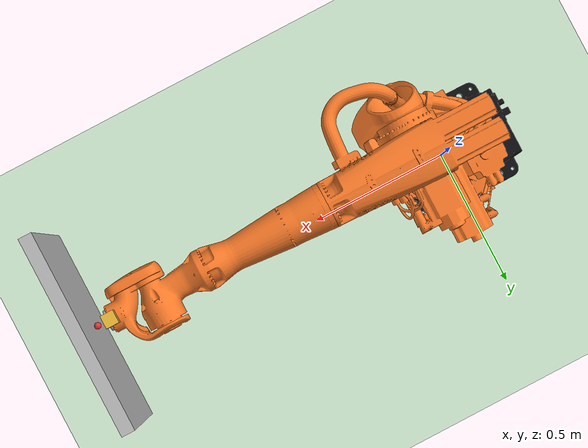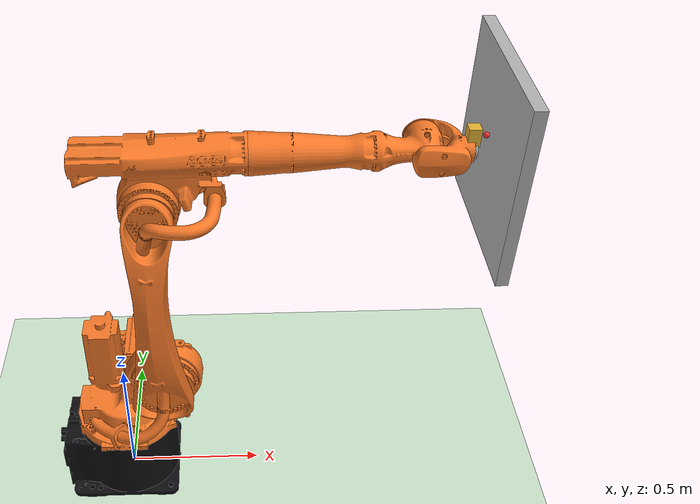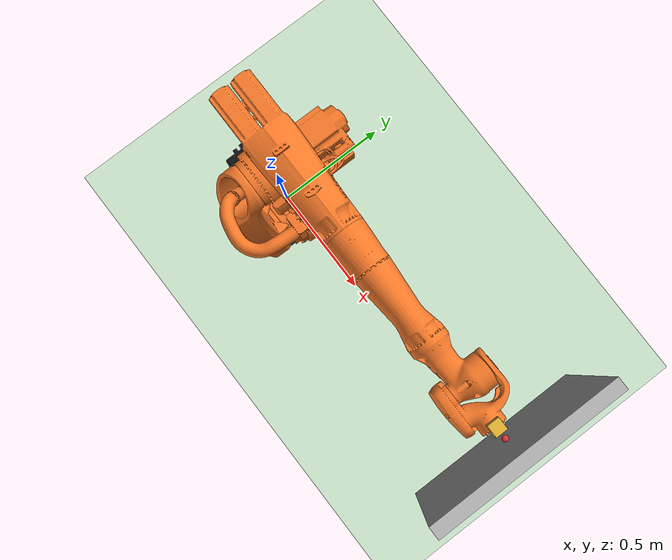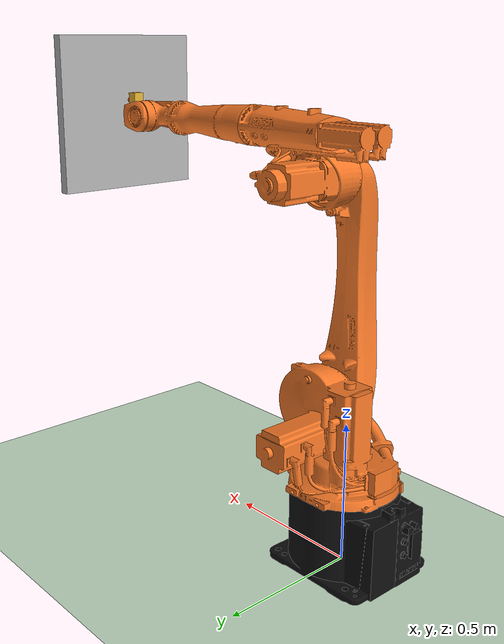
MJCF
<mujoco model="kuka_kr20_scene">

    <!-- meshdir resolves relative to THIS file's directory:
         models/ → ../../../../kuka/model/kuka_kr20/assets -->
    <compiler angle="radian" boundmass="0.001" boundinertia="0.001"
              meshdir="../../../../kuka/model/kuka_kr20/assets"/>

    <option timestep="0.004" gravity="0 0 -9.81" integrator="implicitfast"
            solver="Newton" iterations="100"/>

    <default>
        <default class="kuka">
            <joint axis="0 0 1"/>
            <default class="visual">
                <geom type="mesh" contype="0" conaffinity="0" group="1"/>
            </default>
            <default class="collision">
                <geom group="2"/>
            </default>
        </default>
    </default>

    <asset>
        <material name="kuka_black"
            rgba="0.054901960784313725 0.054901960784313725 0.06274509803921569 1"/>
        <material name="kuka_orange"
            rgba="0.9647058823529412 0.47058823529411764 0.1568627450980392 1"/>
        <material name="silver" rgba="0.7 0.7 0.7 1"/>

        <mesh name="base_link" file="base_link.stl" scale="0.001 0.001 0.001"/>
        <mesh name="link_1_1"  file="link_1_1.stl"  scale="0.001 0.001 0.001"/>
        <mesh name="link_2_1"  file="link_2_1.stl"  scale="0.001 0.001 0.001"/>
        <mesh name="link_3_1"  file="link_3_1.stl"  scale="0.001 0.001 0.001"/>
        <mesh name="link_4_1"  file="link_4_1.stl"  scale="0.001 0.001 0.001"/>
        <mesh name="link_5_1"  file="link_5_1.stl"  scale="0.001 0.001 0.001"/>
        <mesh name="link_6_1"  file="link_6_1.stl"  scale="0.001 0.001 0.001"/>
    </asset>

    <worldbody>
        <light pos="0 0 3" dir="0 0 -1" diffuse="0.8 0.8 0.8"/>
        <geom name="floor" type="plane" size="5 5 0.1" pos="0 0 0"
              rgba="0.8 0.9 0.8 1" contype="1" conaffinity="1"/>

        <body name="target" mocap="true" pos="1.159 0.0 1.45">
            <geom type="box" size="0.012 0.012 0.012" rgba="0 1 0 0.4"
                  contype="0" conaffinity="0"/>
        </body>

        <!-- Full KR20 arm — body hierarchy from kuka_kr20.xml unchanged. -->
        <body name="base_link" pos="0 0 0">
            <inertial pos="-0.02519167908195973 -0.0003512237430115979 0.14073533087089485"
                mass="2.7534689254296694"
                diaginertia="4.167631 5.193899 5.744846"/>
            <geom type="mesh" name="base_link_mesh" mesh="base_link" material="kuka_black"/>

            <body name="link_1_1" pos="0 0 0.274469">
                <inertial pos="0.04262669771195508 0.022539294966451077 0.16742328594359268"
                    mass="1.95025233840842"
                    diaginertia="3.903396 4.254089 4.101512"/>
                <joint name="joint_1" axis="0 0 1" limited="true"
                    range="-3.2288591161895095 3.2288591161895095"/>
                <geom type="mesh" name="link_1_1_mesh" pos="0 0 -0.274469"
                    mesh="link_1_1" material="kuka_orange"/>

                <body name="link_2_1" pos="0.16 -0.0948 0.245531">
                    <inertial pos="-0.006708726638690016 -0.08230603603988629 0.35023181950025006"
                        mass=".8242519331073362"
                        diaginertia="4.984932 5.021308 0.256664"/>
                    <joint name="joint_2" axis="0 -1 0" limited="true"
                        range="-3.2288591161895095 1.1344640137963142"/>
                    <geom type="mesh" name="link_2_1_mesh" pos="-0.16 0.0948 -0.52"
                        mesh="link_2_1" material="kuka_orange"/>

                    <body name="link_3_1" pos="0 -0.0203 0.78">
                        <inertial pos="0.03856241201011176 0.11370205937926676 0.07616220977557053"
                            mass="1.1562183723958658"
                            diaginertia="1.475083 2.199261 2.25828"/>
                        <joint name="joint_3" axis="0 1 0" limited="true"
                            range="-2.4085543677521746 3.0543261909900763"/>
                        <geom type="mesh" name="link_3_1_mesh" pos="-0.16 0.1151 -1.3"
                            mesh="link_3_1" material="kuka_orange"/>

                        <body name="link_4_1" pos="0.3 0.1151 0.15">
                            <inertial
                                pos="0.2794641231700052 0.005705547665961539 -1.1441231588804612e-06"
                                mass=".47719118331815324"
                                diaginertia="0.089286 1.63285 1.644056"/>
                            <joint name="joint_4" axis="1 0 0" limited="true"
                                range="-6.108652381980153 6.108652381980153"/>
                            <geom type="mesh" name="link_4_1_mesh" pos="-0.46 0 -1.45"
                                mesh="link_4_1" material="kuka_orange"/>

                            <body name="link_5_1" pos="0.56 0.0923 0">
                                <inertial
                                    pos="0.05739426005238135 -0.10605062717888086 -4.807006906970557e-06"
                                    mass=".10353274319603718"
                                    diaginertia="0.043336 0.032453 0.064603"/>
                                <joint name="joint_5" axis="0 1 0" limited="true"
                                    range="-2.2689280275926285 2.2689280275926285"/>
                                <geom type="mesh" name="link_5_1_mesh" pos="-1.02 -0.0923 -1.45"
                                    mesh="link_5_1" material="kuka_orange"/>

                                <body name="link_6_1" pos="0.139 -0.0923 0">
                                    <inertial
                                        pos="0.008129076502710442 -2.0340839963698945e-14 8.253251104872739e-05"
                                        mass="0.0020169644458108382"
                                        diaginertia="0.000104 5.5e-05 5.4e-05"/>
                                    <joint name="joint_6" axis="1 0 0" limited="true"
                                        range="-6.108652381980153 6.108652381980153"/>
                                    <geom type="mesh" name="link_6_1_mesh" pos="-1.159 0 -1.45"
                                        mesh="link_6_1" material="silver"/>

                                    <body name="payload" pos="0 0 0.05">
                                        <inertial pos="0 0 0" mass="1.0"
                                            diaginertia="0.001 0.001 0.001"/>
                                        <site name="ft_site" pos="0 0 0" size="0.005"
                                            rgba="1 0 0 1"/>
                                        <geom name="payload_geom" type="box"
                                            size="0.02 0.02 0.03" rgba="0.9 0.7 0.2 1"/>
                                        <geom name="tip" type="sphere" size="0.01"
                                            pos="0.04 0 0" rgba="0.9 0.2 0.2 1"/>
                                    </body>
                                </body>
                            </body>
                        </body>
                    </body>
                </body>
            </body>
        </body>

        <body name="wall" pos="1.234 0 1.45">
            <geom name="wall_geom" type="box" size="0.02 0.3 0.3"
                rgba="0.7 0.7 0.7 1" contype="1" conaffinity="1"/>
        </body>
    </worldbody>

    <!-- Equality weld: constraint solver drives all 6 joints to satisfy this,
         giving implicit IK. Compliance matches the TCP scene (soft weld). -->
    <equality>
        <weld name="track" body1="link_6_1" body2="target"
              solref="0.008 1" solimp="0.99 0.999 0.001"/>
    </equality>

    <contact>
        <exclude body1="base_link" body2="link_1_1"/>
        <exclude body1="link_1_1"  body2="link_2_1"/>
        <exclude body1="link_2_1"  body2="link_3_1"/>
        <exclude body1="link_3_1"  body2="link_4_1"/>
        <exclude body1="link_4_1"  body2="link_5_1"/>
        <exclude body1="link_5_1"  body2="link_6_1"/>
        <exclude body1="link_6_1"  body2="payload"/>
    </contact>

    <sensor>
        <force  name="ft_force"  site="ft_site"/>
        <torque name="ft_torque" site="ft_site"/>
    </sensor>

</mujoco>
